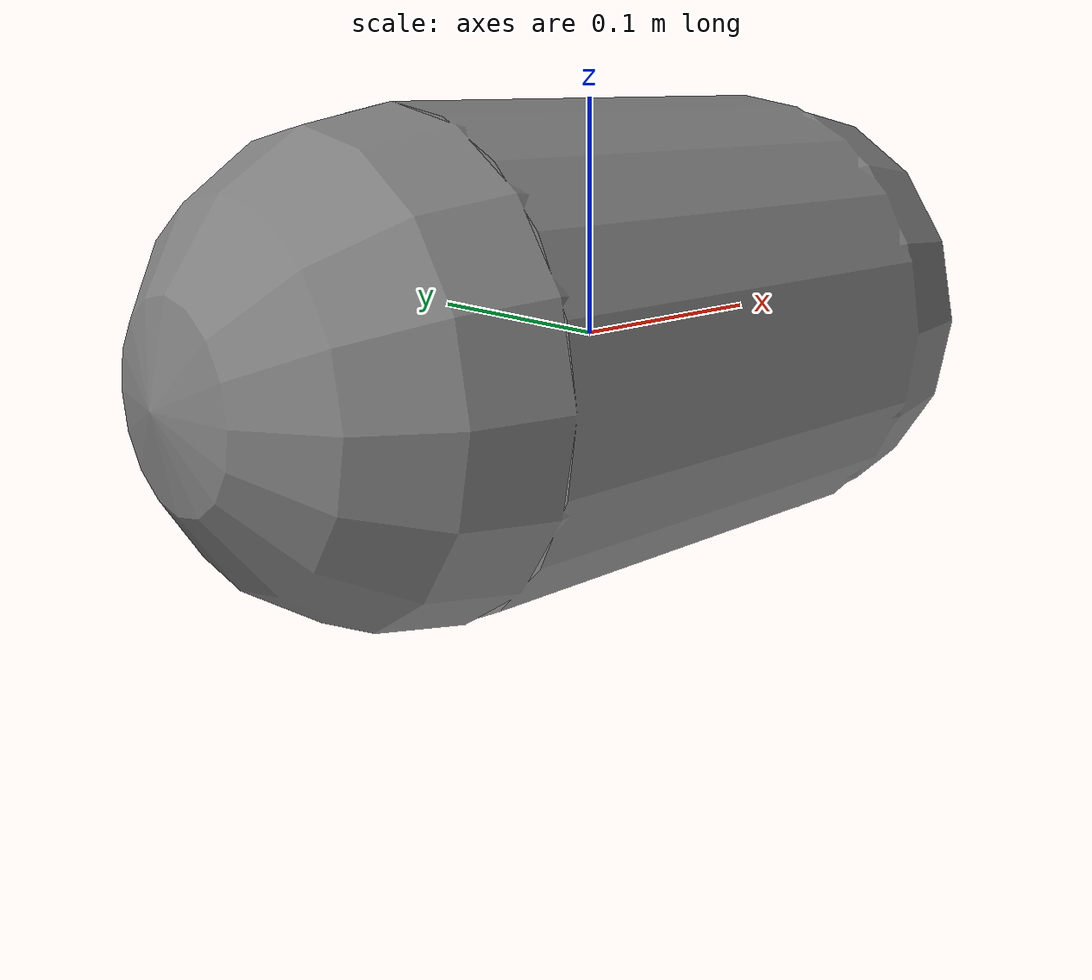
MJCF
<mujoco model="double integrator">
    <compiler inertiafromgeom="true"/>

    <option iterations="1" ls_iterations="5">
        <flag eulerdamp="disable"/>
    </option>

    <default>
        <joint armature="0" damping="1"/>
        <geom contype="0" conaffinity="0" friction="1 0.1 0.1"/>
    </default>

    <worldbody>
        <light diffuse=".5 .5 .5" pos="0 0 3" dir="0 0 -1"/>
        <body name="body" pos="0 0 0">
            <joint name="x_slider" type="slide" axis="1 0 0" pos="0 0 0"/>
            <joint name="y_slider" type="slide" axis="0 1 0" pos="0 0 0"/>
            <geom name="body_geom" pos="0 0 0" quat="1 0 1 0" size="0.1 0.1" type="capsule"/>
        </body>
    </worldbody>

    <actuator>
        <motor ctrllimited="true" ctrlrange="-3 3" gear="100" joint="x_slider" name="x_motor"/>
        <motor ctrllimited="true" ctrlrange="-3 3" gear="100" joint="y_slider" name="y_motor"/>
    </actuator>

</mujoco>
